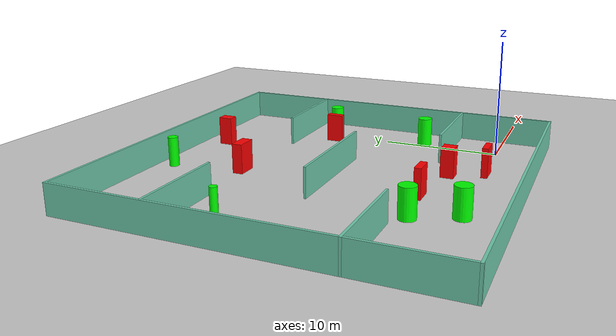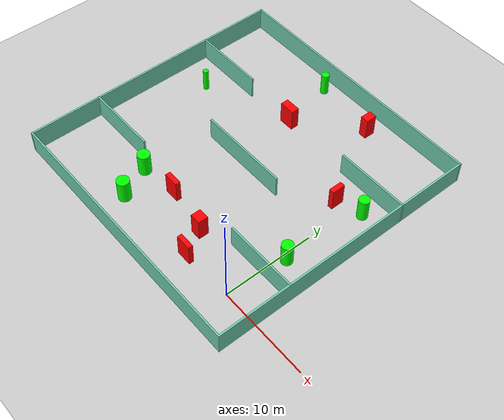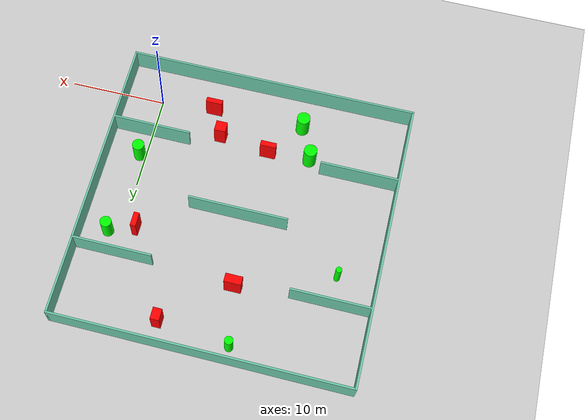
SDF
<sdf version="1.7">
 <world name="default">
  <light name="sun" type="directional">
   <pose>0 0 10 0 -0 0</pose>
   <diffuse>0.8 0.8 0.8 1</diffuse>
   <specular>0.2 0.2 0.2 1</specular>
   <attenuation>
    <range>1000</range>
    <constant>0.9</constant>
    <linear>0.01</linear>
    <quadratic>0.001</quadratic>
   </attenuation>
   <direction>-0.5 0.1 -0.9</direction>
   <spot><inner_angle>0</inner_angle><outer_angle>0</outer_angle><falloff>0</falloff></spot>
  </light>
  <model name="ground_plane">
   <static>1</static>
   <link name="link">
    <collision name="collision">
     <geometry><plane><normal>0 0 1</normal><size>100 100</size></plane></geometry>
     <surface>
      <contact><collide_bitmask>65535</collide_bitmask></contact>
      <friction><ode><mu>100</mu><mu2>50</mu2></ode></friction>
     </surface>
    </collision>
    <visual name="visual">
     <cast_shadows>0</cast_shadows>
     <geometry><plane><normal>0 0 1</normal><size>100 100</size></plane></geometry>
     <material>
      <script><uri>file://media/materials/scripts/gazebo.material</uri><name>Gazebo/Grey</name></script>
     </material>
    </visual>
   </link>
  </model>
  <gravity>0 0 -9.8</gravity>
  <magnetic_field>6e-06 2.3e-05 -4.2e-05</magnetic_field>
  <atmosphere type="adiabatic"/>
  <physics type="ode">
   <max_step_size>0.001</max_step_size>
   <real_time_factor>1</real_time_factor>
   <real_time_update_rate>1000</real_time_update_rate>
  </physics>
  <scene><ambient>0.4 0.4 0.4 1</ambient><background>0.7 0.7 0.7 1</background><shadows>1</shadows></scene>
  <spherical_coordinates>
   <surface_model>EARTH_WGS84</surface_model>
   <latitude_deg>0</latitude_deg>
   <longitude_deg>0</longitude_deg>
   <elevation>0</elevation>
   <heading_deg>0</heading_deg>
  </spherical_coordinates>
  <model name="my_base_walls">
   <link name="Wall_10">
    <collision name="Wall_10_Collision">
     <geometry><box><size>8.2 0.2 2.5</size></box></geometry>
     <pose>0 0 1.25 0 -0 0</pose>
    </collision>
    <visual name="Wall_10_Visual">
     <pose>0 0 1.25 0 -0 0</pose>
     <geometry><box><size>8.2 0.2 2.5</size></box></geometry>
     <material>
      <script><uri>file://media/materials/scripts/gazebo.material</uri><name>Gazebo/Grey</name></script>
      <ambient>0.435294 0.796078 0.67451 1</ambient>
     </material>
     <meta><layer>0</layer></meta>
    </visual>
    <pose>-11 -7 0 0 -0 0</pose>
   </link>
   <link name="Wall_12">
    <collision name="Wall_12_Collision">
     <geometry><box><size>8.2 0.2 2.5</size></box></geometry>
     <pose>0 0 1.25 0 -0 0</pose>
    </collision>
    <visual name="Wall_12_Visual">
     <pose>0 0 1.25 0 -0 0</pose>
     <geometry><box><size>8.2 0.2 2.5</size></box></geometry>
     <material>
      <script><uri>file://media/materials/scripts/gazebo.material</uri><name>Gazebo/Grey</name></script>
      <ambient>0.435294 0.796078 0.67451 1</ambient>
     </material>
     <meta><layer>0</layer></meta>
    </visual>
    <pose>-11 7 0 0 -0 0</pose>
   </link>
   <link name="Wall_14">
    <collision name="Wall_14_Collision">
     <geometry><box><size>8.2 0.2 2.5</size></box></geometry>
     <pose>0 0 1.25 0 -0 0</pose>
    </collision>
    <visual name="Wall_14_Visual">
     <pose>0 0 1.25 0 -0 0</pose>
     <geometry><box><size>8.2 0.2 2.5</size></box></geometry>
     <material>
      <script><uri>file://media/materials/scripts/gazebo.material</uri><name>Gazebo/Grey</name></script>
      <ambient>0.435294 0.796078 0.67451 1</ambient>
     </material>
     <meta><layer>0</layer></meta>
    </visual>
    <pose>11 7 0 0 -0 3.14159</pose>
   </link>
   <link name="Wall_16">
    <collision name="Wall_16_Collision">
     <geometry><box><size>10.2 0.2 2.5</size></box></geometry>
     <pose>0 0 1.25 0 -0 0</pose>
    </collision>
    <visual name="Wall_16_Visual">
     <pose>0 0 1.25 0 -0 0</pose>
     <geometry><box><size>10.2 0.2 2.5</size></box></geometry>
     <material>
      <script><uri>file://media/materials/scripts/gazebo.material</uri><name>Gazebo/Grey</name></script>
      <ambient>0.435294 0.796078 0.67451 1</ambient>
     </material>
     <meta><layer>0</layer></meta>
    </visual>
    <pose>0 0 0 0 -0 3.14159</pose>
   </link>
   <link name="Wall_2">
    <collision name="Wall_2_Collision">
     <geometry><box><size>30.2 0.2 2.5</size></box></geometry>
     <pose>0 0 1.25 0 -0 0</pose>
    </collision>
    <visual name="Wall_2_Visual">
     <pose>0 0 1.25 0 -0 0</pose>
     <geometry><box><size>30.2 0.2 2.5</size></box></geometry>
     <material>
      <script><uri>file://media/materials/scripts/gazebo.material</uri><name>Gazebo/Grey</name></script>
      <ambient>0.435294 0.796078 0.67451 1</ambient>
     </material>
     <meta><layer>0</layer></meta>
    </visual>
    <pose>0 -15 0 0 -0 3.14159</pose>
   </link>
   <link name="Wall_3">
    <collision name="Wall_3_Collision">
     <geometry><box><size>30.2 0.2 2.5</size></box></geometry>
     <pose>0 0 1.25 0 -0 0</pose>
    </collision>
    <visual name="Wall_3_Visual">
     <pose>0 0 1.25 0 -0 0</pose>
     <geometry><box><size>30.2 0.2 2.5</size></box></geometry>
     <material>
      <script><uri>file://media/materials/scripts/gazebo.material</uri><name>Gazebo/Grey</name></script>
      <ambient>0.435294 0.796078 0.67451 1</ambient>
     </material>
     <meta><layer>0</layer></meta>
    </visual>
    <pose>-15 0 0 0 -0 1.5708</pose>
   </link>
   <link name="Wall_4">
    <collision name="Wall_4_Collision">
     <geometry><box><size>30.2 0.2 2.5</size></box></geometry>
     <pose>0 0 1.25 0 -0 0</pose>
    </collision>
    <visual name="Wall_4_Visual">
     <pose>0 0 1.25 0 -0 0</pose>
     <geometry><box><size>30.2 0.2 2.5</size></box></geometry>
     <material>
      <script><uri>file://media/materials/scripts/gazebo.material</uri><name>Gazebo/Grey</name></script>
      <ambient>0.435294 0.796078 0.67451 1</ambient>
     </material>
     <meta><layer>0</layer></meta>
    </visual>
    <pose>0 15 0 0 -0 0</pose>
   </link>
   <link name="Wall_6">
    <collision name="Wall_6_Collision">
     <geometry><box><size>30.2 0.2 2.5</size></box></geometry>
     <pose>0 0 1.25 0 -0 0</pose>
    </collision>
    <visual name="Wall_6_Visual">
     <pose>0 0 1.25 0 -0 0</pose>
     <geometry><box><size>30.2 0.2 2.5</size></box></geometry>
     <material>
      <script><uri>file://media/materials/scripts/gazebo.material</uri><name>Gazebo/Grey</name></script>
      <ambient>0.435294 0.796078 0.67451 1</ambient>
     </material>
     <meta><layer>0</layer></meta>
    </visual>
    <pose>15 0 0 0 -0 1.5708</pose>
   </link>
   <link name="Wall_8">
    <collision name="Wall_8_Collision">
     <geometry><box><size>8.2 0.2 2.5</size></box></geometry>
     <pose>0 0 1.25 0 -0 0</pose>
    </collision>
    <visual name="Wall_8_Visual">
     <pose>0 0 1.25 0 -0 0</pose>
     <geometry><box><size>8.2 0.2 2.5</size></box></geometry>
     <material>
      <script><uri>file://media/materials/scripts/gazebo.material</uri><name>Gazebo/Grey</name></script>
      <ambient>0.435294 0.796078 0.67451 1</ambient>
     </material>
     <meta><layer>0</layer></meta>
    </visual>
    <pose>11 -7 0 0 -0 3.14159</pose>
   </link>
   <static>1</static>
   <pose>-11 11 0 0 -0 0</pose>
  </model>
  <model name="cylinder1">
   <static>1</static>
   <link name="link">
    <inertial>
     <mass>1</mass>
     <inertia><ixx>0.5</ixx><ixy>0</ixy><ixz>0</ixz><iyy>0.5</iyy><iyz>0</iyz><izz>1</izz></inertia>
    </inertial>
    <collision name="collision">
     <geometry><cylinder><radius>0.577572251269499</radius><length>2.5</length></cylinder></geometry>
    </collision>
    <visual name="visual">
     <geometry><cylinder><radius>0.577572251269499</radius><length>2.5</length></cylinder></geometry>
     <material>
      <ambient>0 1 0 1</ambient>
      <diffuse>0 1 0 1</diffuse>
      <specular>0.1 0.1 0.1 1</specular>
      <emissive>0 0 0 0</emissive>
     </material>
    </visual>
   </link>
   <pose>1.2827949415796134 15.69095058204428 1.25 0 0 0</pose>
  </model>
  <model name="cylinder2">
   <static>1</static>
   <link name="link">
    <inertial>
     <mass>1</mass>
     <inertia><ixx>0.5</ixx><ixy>0</ixy><ixz>0</ixz><iyy>0.5</iyy><iyz>0</iyz><izz>1</izz></inertia>
    </inertial>
    <collision name="collision">
     <geometry><cylinder><radius>0.6140407168231805</radius><length>2.5</length></cylinder></geometry>
    </collision>
    <visual name="visual">
     <geometry><cylinder><radius>0.6140407168231805</radius><length>2.5</length></cylinder></geometry>
     <material>
      <ambient>0 1 0 1</ambient>
      <diffuse>0 1 0 1</diffuse>
      <specular>0.1 0.1 0.1 1</specular>
      <emissive>0 0 0 0</emissive>
     </material>
    </visual>
   </link>
   <pose>0.6228736677217483 6.661564822737596 1.25 0 0 0</pose>
  </model>
  <model name="cylinder3">
   <static>1</static>
   <link name="link">
    <inertial>
     <mass>1</mass>
     <inertia><ixx>0.5</ixx><ixy>0</ixy><ixz>0</ixz><iyy>0.5</iyy><iyz>0</iyz><izz>1</izz></inertia>
    </inertial>
    <collision name="collision">
     <geometry><cylinder><radius>0.6868076672634565</radius><length>2.5</length></cylinder></geometry>
    </collision>
    <visual name="visual">
     <geometry><cylinder><radius>0.6868076672634565</radius><length>2.5</length></cylinder></geometry>
     <material>
      <ambient>0 1 0 1</ambient>
      <diffuse>0 1 0 1</diffuse>
      <specular>0.1 0.1 0.1 1</specular>
      <emissive>0 0 0 0</emissive>
     </material>
    </visual>
   </link>
   <pose>-15.123212961207651 -0.5413073448696957 1.25 0 0 0</pose>
  </model>
  <model name="cylinder4">
   <static>1</static>
   <link name="link">
    <inertial>
     <mass>1</mass>
     <inertia><ixx>0.5</ixx><ixy>0</ixy><ixz>0</ixz><iyy>0.5</iyy><iyz>0</iyz><izz>1</izz></inertia>
    </inertial>
    <collision name="collision">
     <geometry><cylinder><radius>0.6828897237384716</radius><length>2.5</length></cylinder></geometry>
    </collision>
    <visual name="visual">
     <geometry><cylinder><radius>0.6828897237384716</radius><length>2.5</length></cylinder></geometry>
     <material>
      <ambient>0 1 0 1</ambient>
      <diffuse>0 1 0 1</diffuse>
      <specular>0.1 0.1 0.1 1</specular>
      <emissive>0 0 0 0</emissive>
     </material>
    </visual>
   </link>
   <pose>-16.63082060052718 2.9554927211482607 1.25 0 0 0</pose>
  </model>
  <model name="cylinder5">
   <static>1</static>
   <link name="link">
    <inertial>
     <mass>1</mass>
     <inertia><ixx>0.5</ixx><ixy>0</ixy><ixz>0</ixz><iyy>0.5</iyy><iyz>0</iyz><izz>1</izz></inertia>
    </inertial>
    <collision name="collision">
     <geometry><cylinder><radius>0.3051526370233309</radius><length>2.5</length></cylinder></geometry>
    </collision>
    <visual name="visual">
     <geometry><cylinder><radius>0.3051526370233309</radius><length>2.5</length></cylinder></geometry>
     <material>
      <ambient>0 1 0 1</ambient>
      <diffuse>0 1 0 1</diffuse>
      <specular>0.1 0.1 0.1 1</specular>
      <emissive>0 0 0 0</emissive>
     </material>
    </visual>
   </link>
   <pose>-22.08317965153007 14.964635185320844 1.25 0 0 0</pose>
  </model>
  <model name="cylinder6">
   <static>1</static>
   <link name="link">
    <inertial>
     <mass>1</mass>
     <inertia><ixx>0.5</ixx><ixy>0</ixy><ixz>0</ixz><iyy>0.5</iyy><iyz>0</iyz><izz>1</izz></inertia>
    </inertial>
    <collision name="collision">
     <geometry><cylinder><radius>0.4238745079264341</radius><length>2.5</length></cylinder></geometry>
    </collision>
    <visual name="visual">
     <geometry><cylinder><radius>0.4238745079264341</radius><length>2.5</length></cylinder></geometry>
     <material>
      <ambient>0 1 0 1</ambient>
      <diffuse>0 1 0 1</diffuse>
      <specular>0.1 0.1 0.1 1</specular>
      <emissive>0 0 0 0</emissive>
     </material>
    </visual>
   </link>
   <pose>-13.52638948488719 24.424110602367385 1.25 0 0 0</pose>
  </model>
  <model name="box1">
   <static>1</static>
   <link name="link">
    <inertial>
     <mass>1</mass>
     <inertia><ixx>0.083</ixx><ixy>0</ixy><ixz>0</ixz><iyy>0.083</iyy><iyz>0</iyz><izz>0.083</izz></inertia>
    </inertial>
    <collision name="collision">
     <geometry><box><size>1.1745899577272239 1.1028386225880586 2.5</size></box></geometry>
    </collision>
    <visual name="visual">
     <geometry><box><size>1.1745899577272239 1.1028386225880586 2.5</size></box></geometry>
     <material>
      <ambient>1 0 0 1</ambient>
      <diffuse>1 0 0 1</diffuse>
      <specular>0.1 0.1 0.1 1</specular>
      <emissive>0 0 0 0</emissive>
     </material>
    </visual>
    <sensor name="my_contact" type="contact">
     <contact><collision>box_collision</collision><topic>__default_topic__</topic></contact>
    </sensor>
   </link>
   <pose>-7.043106355466826 2.4902410310565903 1.25 0 0 0</pose>
  </model>
  <model name="box2">
   <static>1</static>
   <link name="link">
    <inertial>
     <mass>1</mass>
     <inertia><ixx>0.083</ixx><ixy>0</ixy><ixz>0</ixz><iyy>0.083</iyy><iyz>0</iyz><izz>0.083</izz></inertia>
    </inertial>
    <collision name="collision">
     <geometry><box><size>0.5631939242192926 1.4538801403019654 2.5</size></box></geometry>
    </collision>
    <visual name="visual">
     <geometry><box><size>0.5631939242192926 1.4538801403019654 2.5</size></box></geometry>
     <material>
      <ambient>1 0 0 1</ambient>
      <diffuse>1 0 0 1</diffuse>
      <specular>0.1 0.1 0.1 1</specular>
      <emissive>0 0 0 0</emissive>
     </material>
    </visual>
    <sensor name="my_contact" type="contact">
     <contact><collision>box_collision</collision><topic>__default_topic__</topic></contact>
    </sensor>
   </link>
   <pose>-1.430403900792843 14.720143730005539 1.25 0 0 0</pose>
  </model>
  <model name="box3">
   <static>1</static>
   <link name="link">
    <inertial>
     <mass>1</mass>
     <inertia><ixx>0.083</ixx><ixy>0</ixy><ixz>0</ixz><iyy>0.083</iyy><iyz>0</iyz><izz>0.083</izz></inertia>
    </inertial>
    <collision name="collision">
     <geometry><box><size>1.6958379065405116 0.5177100418272909 2.5</size></box></geometry>
    </collision>
    <visual name="visual">
     <geometry><box><size>1.6958379065405116 0.5177100418272909 2.5</size></box></geometry>
     <material>
      <ambient>1 0 0 1</ambient>
      <diffuse>1 0 0 1</diffuse>
      <specular>0.1 0.1 0.1 1</specular>
      <emissive>0 0 0 0</emissive>
     </material>
    </visual>
    <sensor name="my_contact" type="contact">
     <contact><collision>box_collision</collision><topic>__default_topic__</topic></contact>
    </sensor>
   </link>
   <pose>-5.617555349009548 -0.26930695982458364 1.25 0 0 0</pose>
  </model>
  <model name="box4">
   <static>1</static>
   <link name="link">
    <inertial>
     <mass>1</mass>
     <inertia><ixx>0.083</ixx><ixy>0</ixy><ixz>0</ixz><iyy>0.083</iyy><iyz>0</iyz><izz>0.083</izz></inertia>
    </inertial>
    <collision name="collision">
     <geometry><box><size>1.6455394191564776 0.5563388691932613 2.5</size></box></geometry>
    </collision>
    <visual name="visual">
     <geometry><box><size>1.6455394191564776 0.5563388691932613 2.5</size></box></geometry>
     <material>
      <ambient>1 0 0 1</ambient>
      <diffuse>1 0 0 1</diffuse>
      <specular>0.1 0.1 0.1 1</specular>
      <emissive>0 0 0 0</emissive>
     </material>
    </visual>
    <sensor name="my_contact" type="contact">
     <contact><collision>box_collision</collision><topic>__default_topic__</topic></contact>
    </sensor>
   </link>
   <pose>-12.283641423437722 3.316589575571589 1.25 0 0 0</pose>
  </model>
  <model name="box5">
   <static>1</static>
   <link name="link">
    <inertial>
     <mass>1</mass>
     <inertia><ixx>0.083</ixx><ixy>0</ixy><ixz>0</ixz><iyy>0.083</iyy><iyz>0</iyz><izz>0.083</izz></inertia>
    </inertial>
    <collision name="collision">
     <geometry><box><size>0.9036568881320788 1.202077142678235 2.5</size></box></geometry>
    </collision>
    <visual name="visual">
     <geometry><box><size>0.9036568881320788 1.202077142678235 2.5</size></box></geometry>
     <material>
      <ambient>1 0 0 1</ambient>
      <diffuse>1 0 0 1</diffuse>
      <specular>0.1 0.1 0.1 1</specular>
      <emissive>0 0 0 0</emissive>
     </material>
    </visual>
    <sensor name="my_contact" type="contact">
     <contact><collision>box_collision</collision><topic>__default_topic__</topic></contact>
    </sensor>
   </link>
   <pose>-6.2039093909571825 23.610869501490974 1.25 0 0 0</pose>
  </model>
  <model name="box6">
   <static>1</static>
   <link name="link">
    <inertial>
     <mass>1</mass>
     <inertia><ixx>0.083</ixx><ixy>0</ixy><ixz>0</ixz><iyy>0.083</iyy><iyz>0</iyz><izz>0.083</izz></inertia>
    </inertial>
    <collision name="collision">
     <geometry><box><size>1.7243774328915593 0.8777768627310312 2.5</size></box></geometry>
    </collision>
    <visual name="visual">
     <geometry><box><size>1.7243774328915593 0.8777768627310312 2.5</size></box></geometry>
     <material>
      <ambient>1 0 0 1</ambient>
      <diffuse>1 0 0 1</diffuse>
      <specular>0.1 0.1 0.1 1</specular>
      <emissive>0 0 0 0</emissive>
     </material>
    </visual>
    <sensor name="my_contact" type="contact">
     <contact><collision>box_collision</collision><topic>__default_topic__</topic></contact>
    </sensor>
   </link>
   <pose>-12.422156813530144 18.416052834245328 1.25 0 0 0</pose>
  </model>
 </world>
</sdf>
